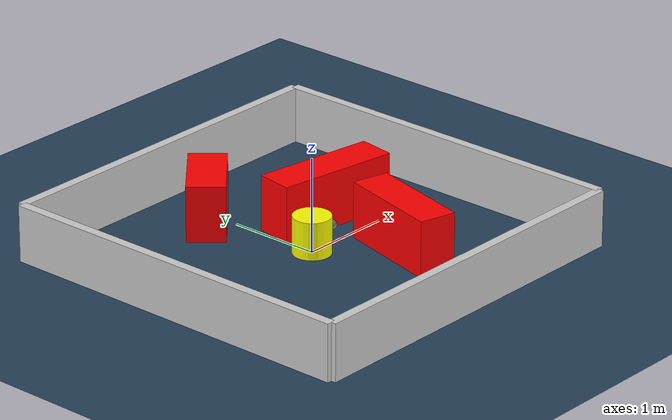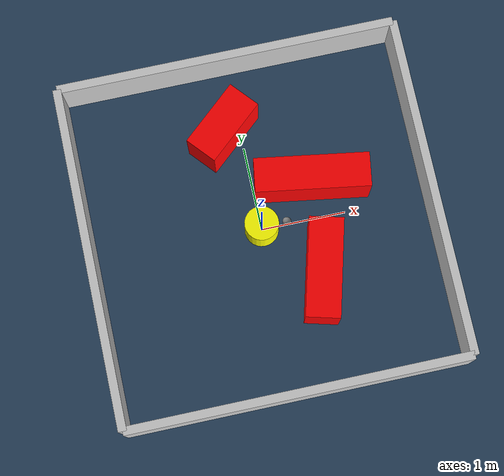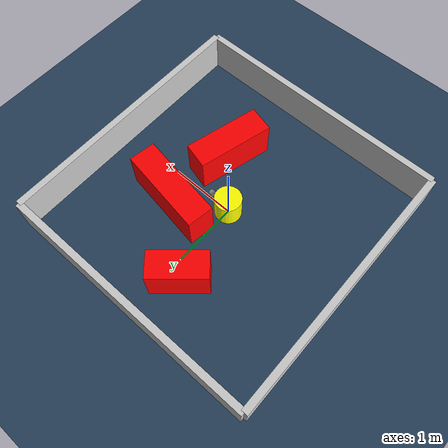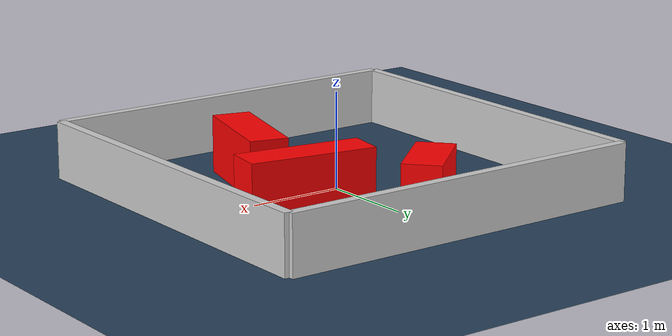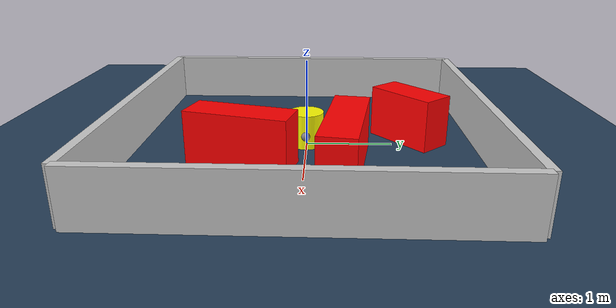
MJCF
<?xml version="1.0" ?>
<mujoco model="generated_environment">
  <option timestep="0.01" integrator="RK4" cone="elliptic"/>
  <default>
    <geom density="1"/>
  </default>
  <asset>
    <texture builtin="gradient" height="3072" rgb1="0.3 0.5 0.7" rgb2="0 0 0" type="skybox" width="512"/>
    <texture builtin="checker" height="300" mark="edge" markrgb="0.8 0.8 0.8" name="groundplane" rgb1="0.2 0.3 0.4" rgb2="0.1 0.2 0.3" type="2d" width="300"/>
    <material name="groundplane" reflectance="0.2" texrepeat="5 5" texture="groundplane" texuniform="true"/>
    <material name="robot" rgba="0.0 1.0 0.0 1"/>
  </asset>
  <worldbody>
    <light dir="0 0 -1" directional="true" pos="0 0 1.5"/>
    <geom condim="4" friction="1.0 0.005 0.001" material="groundplane" name="floor" size="0 0 0.05" type="plane"/>
    <body name="walls">
      <geom name="wall_1" condim="4" pos="-2.0 0.0 0.3" rgba="0.800000011920929 0.800000011920929 0.800000011920929 1.0" size="0.05 2.0 0.3" type="box"/>
      <geom name="wall_2" condim="4" pos="2.0 0.0 0.3" rgba="0.800000011920929 0.800000011920929 0.800000011920929 1.0" size="0.05 2.0 0.3" type="box"/>
      <geom name="wall_3" condim="4" pos="0.0 -2.0 0.3" rgba="0.800000011920929 0.800000011920929 0.800000011920929 1.0" size="2.0 0.05 0.3" type="box"/>
      <geom name="wall_4" condim="4" pos="0.0 2.0 0.3" rgba="0.800000011920929 0.800000011920929 0.800000011920929 1.0" size="2.0 0.05 0.3" type="box"/>
    </body>
    <body name="robot">
      <joint name="joint_x" type="slide" pos="0 0 0" axis="1 0 0"/>
      <joint name="joint_y" type="slide" pos="0 0 0" axis="0 1 0"/>
      <geom name="robot" type="sphere" pos="0.3 0.0 0.2" size="0.05" mass="5." friction="1.0 0.005 0.0001" condim="4" rgba="0.5 0.5 0.5 1.0"/>
      <site name="sensor_ball"/>
    </body>
    <body name="obstacle_movable_1">
      <geom name="obstacle_movable_1" condim="4" pos="0.0 0.0 0.2" euler="0 0 0.0" friction="1.0 0.005 0.001" rgba="1.0 1.0 0.0 1.0" size="0.2 0.2 0.0" type="cylinder" mass="0.1"/>
      <joint type="free"/>
    </body>
    <body name="obstacle_2_static">
      <geom name="obstacle_2_static" condim="4" pos="0.6857655528197748 0.42310843688608357 0.3" euler="0 0 351.1612239617424" friction="1.0 0.005 0.001" rgba="1 0 0 1" size="0.6689468037368737 0.2 0.3" type="box"/>
    </body>
    <body name="obstacle_3_static">
      <geom name="obstacle_3_static" condim="4" pos="-0.2015546299047768 1.215607530604225 0.3" euler="0 0 41.27873509146497" friction="1.0 0.005 0.001" rgba="1 0 0 1" size="0.41956533933564377 0.2 0.3" type="box"/>
    </body>
    <body name="obstacle_4_static">
      <geom name="obstacle_4_static" condim="4" pos="0.5841585682511092 -0.6791166889424873 0.3" euler="0 0 255.33731825627527" friction="1.0 0.005 0.001" rgba="1 0 0 1" size="0.5767543785784048 0.2 0.3" type="box"/>
    </body>
  </worldbody>
  <actuator>
    <motor name="actuator_x" joint="joint_x" gear="1" ctrlrange="-1 1"/>
    <motor name="actuator_y" joint="joint_y" gear="1" ctrlrange="-1 1"/>
  </actuator>
</mujoco>
